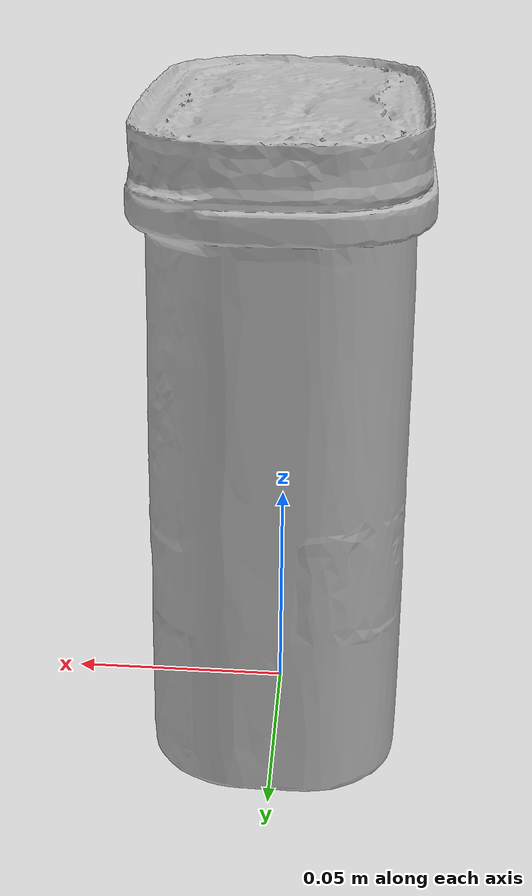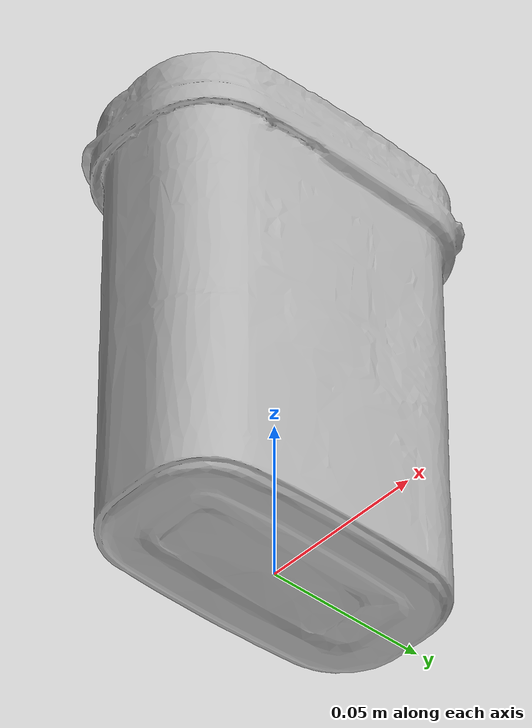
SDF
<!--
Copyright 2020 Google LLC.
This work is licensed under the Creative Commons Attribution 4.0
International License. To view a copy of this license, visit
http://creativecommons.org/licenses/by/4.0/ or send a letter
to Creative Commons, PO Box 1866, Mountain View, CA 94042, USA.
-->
<?xml version="1.0" ?>
<sdf version="1.6">
    <model name="Nestle_Nesquik_Chocolate_Powder_Flavored_Milk_Additive_109_Oz_Canister">
        <link name="link_0">
            <visual name="visual">
                <geometry>
                    <mesh>
                        <uri>meshes/model.obj</uri>
                    </mesh>
                </geometry>
            </visual>
            <collision name="collision_0">
                <geometry>
                    <mesh>
                        <uri>meshes/model.obj</uri>
                    </mesh>
                </geometry>
            </collision>
        </link>
    </model>
</sdf>
